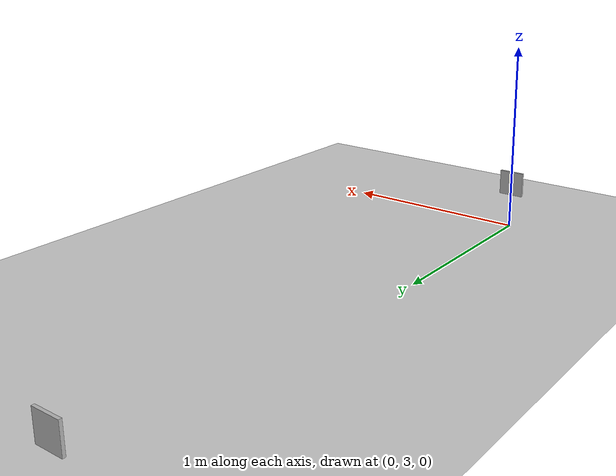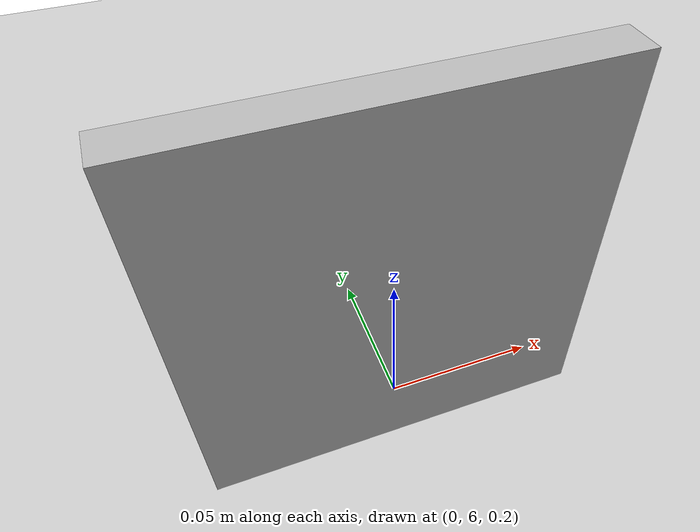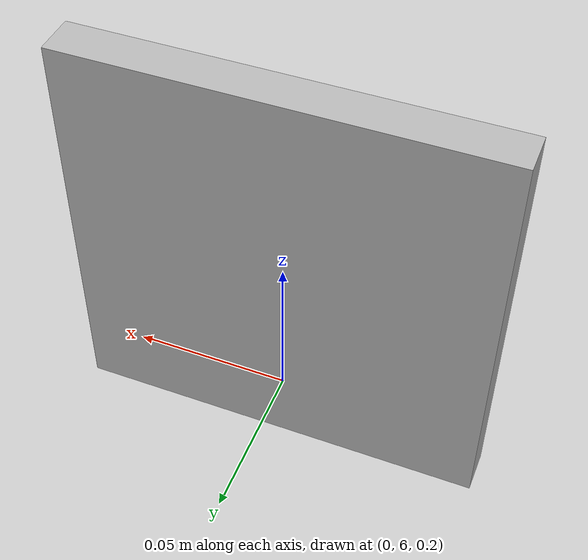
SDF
<?xml version="1.0" ?>

<sdf version="1.5">
	<world name="default">
		<!-- A ground plane -->
		<include>
			<uri>model://ground_plane</uri>
		</include>

        	<!-- aruco landmark 0 -->
		<include>
			<uri>model://aruco_marker_0</uri>
			<pose>0 3 0.25 0 0 1.57079632679</pose>
		</include>

        	<!-- aruco landmark 1 -->
		<include>
			<uri>model://aruco_marker_1</uri>
			<pose>0 6 0.25 0 0 1.57079632679</pose>
		</include>
	</world>
</sdf>

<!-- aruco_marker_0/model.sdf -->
<sdf version="1.5">
  <model name="aruco_marker_0">
    <static>true</static>
    <link name="base">
      <collision name="collision">
        <geometry>
          <box>
            <size>0.013125 0.13125 0.13125</size>
          </box>
        </geometry>
        <surface>
          <friction>
            <ode>
              <mu>100</mu>
              <mu2>50</mu2>
            </ode>
          </friction>
        </surface>
      </collision>

      <visual name="visual">
        <geometry>
          <box>
            <size>0.013125 0.13125 0.13125</size>
          </box>
        </geometry>
        <material>
          <script>
            <uri>model://aruco_marker_0/materials/scripts</uri>
            <uri>model://aruco_marker_0/materials/textures</uri>
            <name>aruco_marker_0/Diffuse</name>
          </script>
        </material>
      </visual>
    </link>

    <joint name="world_joint" type="fixed">
      <child>base</child>
      <parent>world</parent>
      <axis>
        <limit>
          <lower>0</lower>
          <upper>0</upper>
        </limit>
        <xyz>0 1 0</xyz>
        <dynamics>
          <damping>1.0</damping>
        </dynamics>
        <use_parent_model_frame>true</use_parent_model_frame>
      </axis>
      <physics>
        <ode>
          <cfm_damping>1</cfm_damping>
        </ode>
      </physics>
    </joint>
  </model>
</sdf>

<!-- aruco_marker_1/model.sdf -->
<sdf version="1.5">
  <model name="aruco_marker_1">
    <static>true</static>
    <link name="link">
      <collision name="collision">
        <geometry>
          <box>
            <size>0.013125 0.13125 0.13125</size>
          </box>
        </geometry>
        <surface>
          <friction>
            <ode>
              <mu>100</mu>
              <mu2>50</mu2>
            </ode>
          </friction>
        </surface>
      </collision>

      <visual name="visual">
        <geometry>
          <box>
            <size>0.013125 0.13125 0.13125</size>
          </box>
        </geometry>
        <material>
          <script>
            <uri>model://aruco_marker_1/materials/scripts</uri>
            <uri>model://aruco_marker_1/materials/textures</uri>
            <name>aruco_marker_1/Diffuse</name>
          </script>
        </material>
      </visual>
    </link>
  </model>
</sdf>
